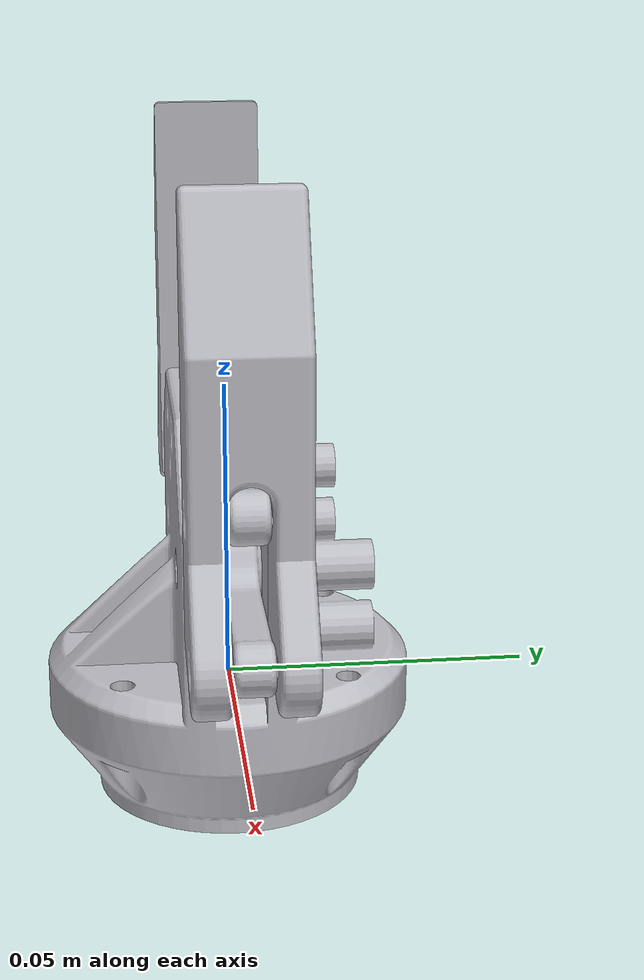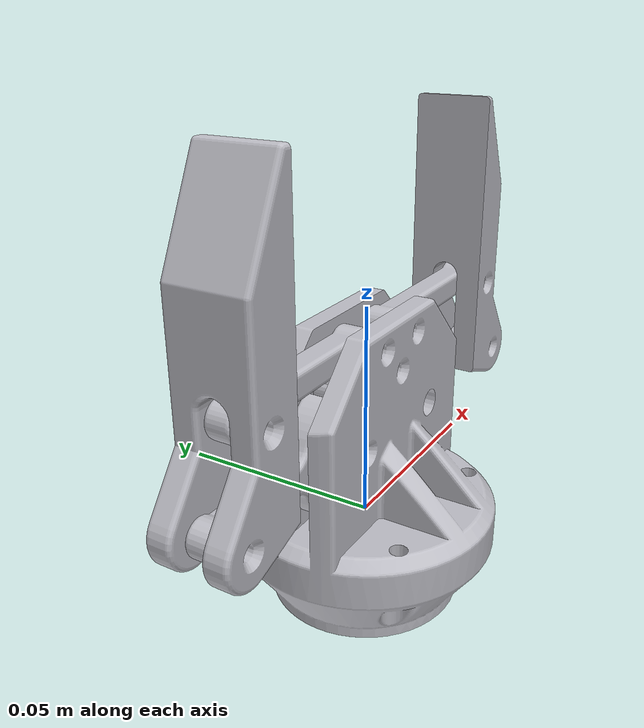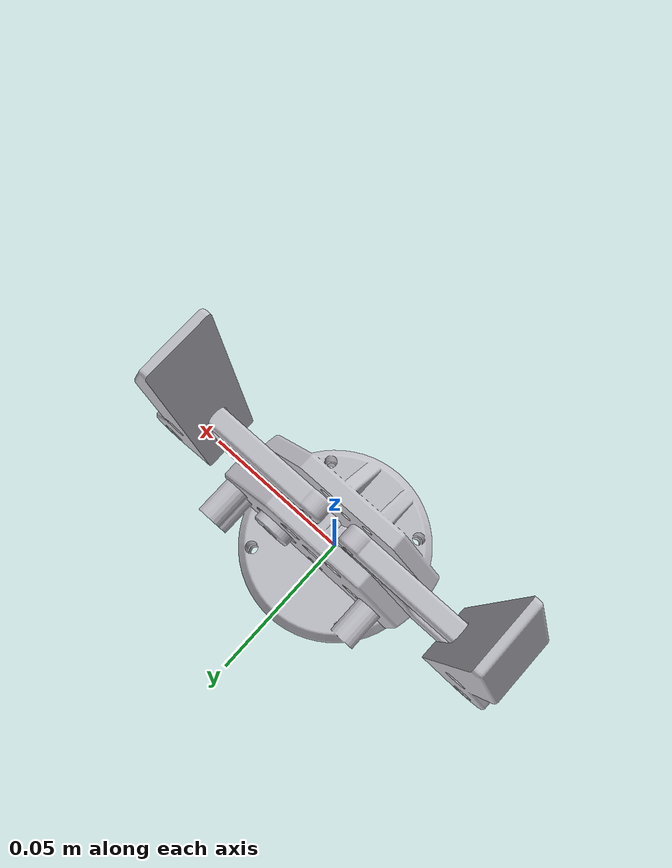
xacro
<?xml version="1.0"?>

<robot xmlns:xacro="http://www.ros.org/wiki/xacro" name="innobot_gripper" >

  <xacro:arg name="prefix" default="" />

  <xacro:include filename="$(find innobot_description)/gripper_description/urdf/gripper.description.urdf.xacro" />
  <xacro:include filename="$(find innobot_description)/gripper_description/urdf/gripper.control.urdf.xacro" />

  <xacro:innobot_gripper prefix="$(arg prefix)"/>

  <xacro:innobot_gripper_ros2_control
  name="InobotGripperHardwareInterface"
  prefix="${arg prefix}"
  />

</robot>

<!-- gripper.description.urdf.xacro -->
<robot xmlns:xacro="http://www.ros.org/wiki/xacro">

     <xacro:macro name="mimic_joint_plugin_gazebo" params="name_prefix parent_joint mimic_joint has_pid:=false multiplier:=1.0 offset:=0 sensitiveness:=0.0 max_effort:=1.0 robot_namespace:=''">
        <gazebo>
        <plugin name="${name_prefix}mimic_joint_plugin" filename="libroboticsgroup_gazebo_mimic_joint_plugin.so">
            <joint>${parent_joint}</joint>
            <mimicJoint>${mimic_joint}</mimicJoint>
            <xacro:if value="${has_pid}">                     <!-- if set to true, PID parameters from "/gazebo_ros_control/pid_gains/${mimic_joint}" are loaded -->
                <hasPID />
            </xacro:if>
            <multiplier>${multiplier}</multiplier>
            <offset>${offset}</offset>
            <sensitiveness>${sensitiveness}</sensitiveness>   <!-- if absolute difference between setpoint and process value is below this threshold, do nothing; 0.0 = disable [rad] -->
            <maxEffort>${max_effort}</maxEffort>              <!-- only taken into account if has_pid:=true [Nm] -->
            <xacro:unless value="${robot_namespace == ''}">
                <robotNamespace>($robot_namespace)</robotNamespace>
            </xacro:unless>
        </plugin>
        </gazebo>
    </xacro:macro>

  <xacro:macro name="innobot_gripper" params="prefix">

    <link name="${prefix}gripper_base_link">
      <inertial>
        <origin xyz="7.274575615099804e-05 2.505983529119562e-06 0.007252366417755507" rpy="0 0 0"/>
        <mass value="0.5374075429473185"/>
        <inertia ixx="0.000224" iyy="0.000267" izz="0.000226" ixy="-1e-06" iyz="-2e-06" ixz="-1e-06"/>
      </inertial>
      <visual>
        <origin xyz="0 0 0" rpy="0 0 0"/>
        <geometry>
          <mesh filename="package://innobot_description/gripper_description/meshes/gripper_base_link.stl" scale="0.001 0.001 0.001"/>
        </geometry>
        <material name="silver"/>
      </visual>
      <collision>
        <origin xyz="0 0 0" rpy="0 0 0"/>
        <geometry>
          <mesh filename="package://innobot_description/gripper_description/meshes/gripper_base_link.stl" scale="0.001 0.001 0.001"/>
        </geometry>
      </collision>
    </link>

    <link name="${prefix}gripper_shoulder_upper_right_1">
      <inertial>
        <origin xyz="0.020000015929033884 0.003999998638672086 2.6482678550099337e-10" rpy="0 0 0"/>
        <mass value="0.012854575385027496"/>
        <inertia ixx="0.0" iyy="2e-06" izz="2e-06" ixy="0.0" iyz="-0.0" ixz="-0.0"/>
      </inertial>
      <visual>
        <origin xyz="-0.007 0.004 -0.044" rpy="0 0 0"/>
        <geometry>
          <mesh filename="package://innobot_description/gripper_description/meshes/gripper_shoulder_upper_right_1.stl" scale="0.001 0.001 0.001"/>
        </geometry>
        <material name="silver"/>
      </visual>
      <collision>
        <origin xyz="-0.007 0.004 -0.044" rpy="0 0 0"/>
        <geometry>
          <mesh filename="package://innobot_description/gripper_description/meshes/gripper_shoulder_upper_right_1.stl" scale="0.001 0.001 0.001"/>
        </geometry>
      </collision>
    </link>

    <link name="${prefix}gripper_shoulder_lower_right_1">
      <inertial>
        <origin xyz="0.005554143092090817 0.00510620755788157 -0.0003329198861910035" rpy="0 0 0"/>
        <mass value="0.044576865883984705"/>
        <inertia ixx="2e-06" iyy="9e-06" izz="8e-06" ixy="0.0" iyz="-0.0" ixz="-0.0"/>
      </inertial>
      <visual>
        <origin xyz="-0.014 0.004 -0.024" rpy="0 0 0"/>
        <geometry>
          <mesh filename="package://innobot_description/gripper_description/meshes/gripper_shoulder_lower_right_1.stl" scale="0.001 0.001 0.001"/>
        </geometry>
        <material name="silver"/>
      </visual>
      <collision>
        <origin xyz="-0.014 0.004 -0.024" rpy="0 0 0"/>
        <geometry>
          <mesh filename="package://innobot_description/gripper_description/meshes/gripper_shoulder_lower_right_1.stl" scale="0.001 0.001 0.001"/>
        </geometry>
      </collision>
    </link>

    <link name="${prefix}gripper_finger_right_1">
      <inertial>
        <origin xyz="-0.007345938165377042 0.0029516918108567244 0.027163443177206467" rpy="0 0 0"/>
        <mass value="0.09442988469167828"/>
        <inertia ixx="3.8e-05" iyy="3.7e-05" izz="5e-06" ixy="0.0" iyz="-0.0" ixz="4e-06"/>
      </inertial>
      <visual>
        <origin xyz="-0.054 0.003 -0.024" rpy="0 0 0"/>
        <geometry>
          <mesh filename="package://innobot_description/gripper_description/meshes/gripper_finger_right_1.stl" scale="0.001 0.001 0.001"/>
        </geometry>
        <material name="silver"/>
      </visual>
      <collision>
        <origin xyz="-0.054 0.003 -0.024" rpy="0 0 0"/>
        <geometry>
          <mesh filename="package://innobot_description/gripper_description/meshes/gripper_finger_right_1.stl" scale="0.001 0.001 0.001"/>
        </geometry>
      </collision>
    </link>

    <link name="${prefix}gripper_shoulder_upper_left_1">
      <inertial>
        <origin xyz="-0.019999984070966367 0.0039999986386720955 2.648270491789617e-10" rpy="0 0 0"/>
        <mass value="0.012854575385027217"/>
        <inertia ixx="0.0" iyy="2e-06" izz="2e-06" ixy="0.0" iyz="0.0" ixz="-0.0"/>
      </inertial>
      <visual>
        <origin xyz="0.007 0.004 -0.044" rpy="0 0 0"/>
        <geometry>
          <mesh filename="package://innobot_description/gripper_description/meshes/gripper_shoulder_upper_left_1.stl" scale="0.001 0.001 0.001"/>
        </geometry>
        <material name="silver"/>
      </visual>
      <collision>
        <origin xyz="0.007 0.004 -0.044" rpy="0 0 0"/>
        <geometry>
          <mesh filename="package://innobot_description/gripper_description/meshes/gripper_shoulder_upper_left_1.stl" scale="0.001 0.001 0.001"/>
        </geometry>
      </collision>
    </link>

    <link name="${prefix}gripper_shoulder_lower_left_1">
      <inertial>
        <origin xyz="-0.00645222840424718 0.003999996700491056 -0.0004062980955956176" rpy="0 0 0"/>
        <mass value="0.038506719386524994"/>
        <inertia ixx="2e-06" iyy="9e-06" izz="7e-06" ixy="0.0" iyz="-0.0" ixz="0.0"/>
      </inertial>
      <visual>
        <origin xyz="0.014 0.004 -0.024" rpy="0 0 0"/>
        <geometry>
          <mesh filename="package://innobot_description/gripper_description/meshes/gripper_shoulder_lower_left_1.stl" scale="0.001 0.001 0.001"/>
        </geometry>
        <material name="silver"/>
      </visual>
      <collision>
        <origin xyz="0.014 0.004 -0.024" rpy="0 0 0"/>
        <geometry>
          <mesh filename="package://innobot_description/gripper_description/meshes/gripper_shoulder_lower_left_1.stl" scale="0.001 0.001 0.001"/>
        </geometry>
      </collision>
    </link>

    <link name="${prefix}gripper_finger_left_1">
      <inertial>
        <origin xyz="0.007342669733612722 0.00294742532298488 0.027148856997984742" rpy="0 0 0"/>
        <mass value="0.09451020323548479"/>
        <inertia ixx="3.8e-05" iyy="3.7e-05" izz="5e-06" ixy="-0.0" iyz="-0.0" ixz="-4e-06"/>
      </inertial>
      <visual>
        <origin xyz="0.054 0.003 -0.024" rpy="0 0 0"/>
        <geometry>
          <mesh filename="package://innobot_description/gripper_description/meshes/gripper_finger_left_1.stl" scale="0.001 0.001 0.001"/>
        </geometry>
        <material name="silver"/>
      </visual>
      <collision>
        <origin xyz="0.054 0.003 -0.024" rpy="0 0 0"/>
        <geometry>
          <mesh filename="package://innobot_description/gripper_description/meshes/gripper_finger_left_1.stl" scale="0.001 0.001 0.001"/>
        </geometry>
      </collision>
    </link>

    <joint name="${prefix}right_finger_joint" type="continuous">
      <origin xyz="0.014 -0.004 0.024" rpy="0 0 0"/>
      <parent link="${prefix}gripper_base_link"/>
      <child link="${prefix}gripper_shoulder_lower_right_1"/>
      <axis xyz="0.0 -1.0 0.0"/>
    </joint>

    <joint name="${prefix}gripper_joint_1" type="continuous">
      <origin xyz="0.007 -0.004 0.044" rpy="0 0 0"/>
      <parent link="${prefix}gripper_base_link"/>
      <child link="${prefix}gripper_shoulder_upper_right_1"/>
      <axis xyz="0.0 -1.0 0.0"/>
      <mimic joint="${prefix}right_finger_joint" multiplier="1" offset="0"/>
    </joint>

    <xacro:mimic_joint_plugin_gazebo name_prefix="joint_1_to_right_finger_joint"
    parent_joint="${prefix}right_finger_joint" mimic_joint="${prefix}gripper_joint_1"
    has_pid="false" multiplier="1.0" max_effort="1000.0" />

    <joint name="${prefix}gripper_joint_3" type="continuous">
      <origin xyz="0.04 0.001 0.0" rpy="0 0 0"/>
      <parent link="${prefix}gripper_shoulder_lower_right_1"/>
      <child link="${prefix}gripper_finger_right_1"/>
      <axis xyz="0.0 1.0 0.0"/>
      <mimic joint="${prefix}right_finger_joint" multiplier="1" offset="0"/>
    </joint>

    <xacro:mimic_joint_plugin_gazebo name_prefix="joint_3_to_right_finger_joint"
    parent_joint="${prefix}right_finger_joint" mimic_joint="${prefix}gripper_joint_3"
    has_pid="false" multiplier="1.0" max_effort="1000.0" />

    <joint name="${prefix}gripper_joint_4" type="continuous">
      <origin xyz="-0.007 -0.004 0.044" rpy="0 0 0"/>
      <parent link="${prefix}gripper_base_link"/>
      <child link="${prefix}gripper_shoulder_upper_left_1"/>
      <axis xyz="0.0 1.0 0.0"/>
      <mimic joint="${prefix}right_finger_joint" multiplier="1" offset="0"/>
    </joint>

    <xacro:mimic_joint_plugin_gazebo name_prefix="joint_4_to_right_finger_joint"
    parent_joint="${prefix}right_finger_joint" mimic_joint="${prefix}gripper_joint_4"
    has_pid="false" multiplier="1.0" max_effort="1000.0" />

    <joint name="${prefix}left_finger_joint" type="continuous">
      <origin xyz="-0.014 -0.004 0.024" rpy="0 0 0"/>
      <parent link="${prefix}gripper_base_link"/>
      <child link="${prefix}gripper_shoulder_lower_left_1"/>
      <axis xyz="0.0 1.0 0.0"/>
      <mimic joint="${prefix}right_finger_joint" multiplier="1" offset="0"/>
    </joint>

    <xacro:mimic_joint_plugin_gazebo name_prefix="left_finger_joint_to_right_finger_joint"
    parent_joint="${prefix}right_finger_joint" mimic_joint="${prefix}left_finger_joint"
    has_pid="false" multiplier="1.0" max_effort="1000.0" />

    <joint name="${prefix}gripper_joint_6" type="continuous">
      <origin xyz="-0.04 0.001 0.0" rpy="0 0 0"/>
      <parent link="${prefix}gripper_shoulder_lower_left_1"/>
      <child link="${prefix}gripper_finger_left_1"/>
      <axis xyz="0.0 1.0 0.0"/>
      <mimic joint="${prefix}right_finger_joint" multiplier="-1" offset="0"/>
    </joint>

    <xacro:mimic_joint_plugin_gazebo name_prefix="joint_6_to_right_finger_joint"
    parent_joint="${prefix}right_finger_joint" mimic_joint="${prefix}gripper_joint_6"
    has_pid="false" multiplier="-1.0" max_effort="1000.0" />

    <!-- might not need for gazebo or rviz -->

  </xacro:macro>
</robot>
